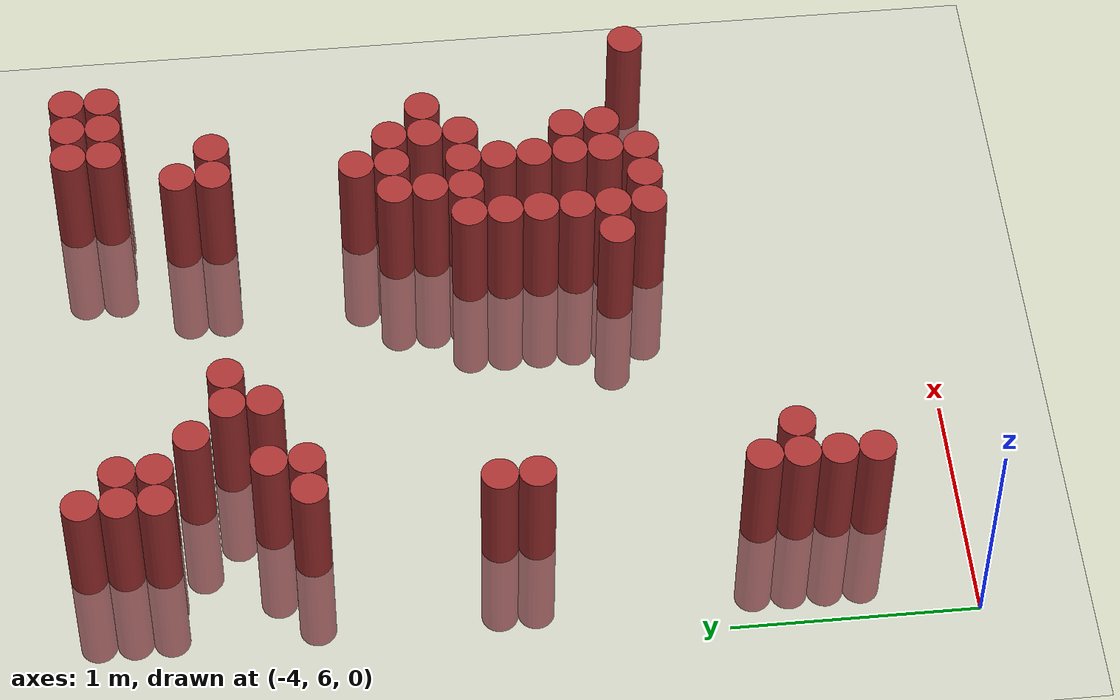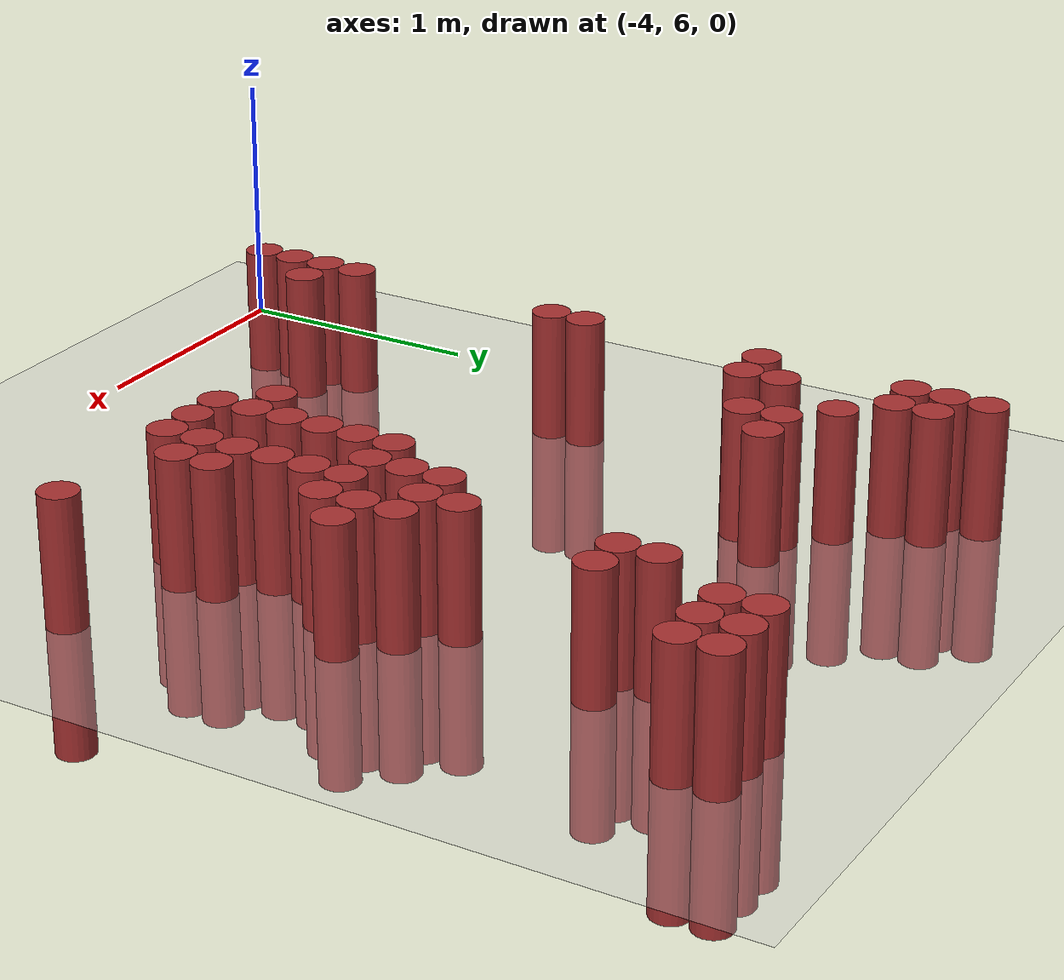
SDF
<sdf version="1.6">
 <world name="world_183">
  <model name="ground_plane">
   <static>1</static>
   <link name="link">
    <collision name="collision">
     <geometry><plane><normal>0 0 1</normal><size>100 100</size></plane></geometry>
     <surface><friction><ode><mu>100</mu><mu2>50</mu2></ode></friction></surface>
    </collision>
    <visual name="visual">
     <cast_shadows>0</cast_shadows>
     <geometry><plane><normal>0 0 1</normal><size>100 100</size></plane></geometry>
     <material>
      <script><uri>file://media/materials/scripts/gazebo.material</uri><name>Gazebo/Grey</name></script>
     </material>
    </visual>
   </link>
  </model>
  <model name="unit_cylinder_173">
   <static>1</static>
   <pose>-3.525000 6.375000 0.000000 0.000000 0.000000 0.000000</pose>
   <link name="link">
    <inertial>
     <mass>1</mass>
     <inertia><ixx>0.145833</ixx><ixy>0</ixy><ixz>0</ixz><iyy>0.145833</iyy><iyz>0</iyz><izz>0.125</izz></inertia>
    </inertial>
    <collision name="collision">
     <geometry><cylinder><radius>0.075000</radius><length>1</length></cylinder></geometry>
    </collision>
    <visual name="visual">
     <geometry><cylinder><radius>0.075000</radius><length>1</length></cylinder></geometry>
     <material>
      <ambient>0.648000 0.192000 0.192000 1</ambient>
      <diffuse>0.648000 0.192000 0.192000 1</diffuse>
     </material>
     <material>
      <script><name>Gazebo/Grey</name><uri>file://media/materials/scripts/gazebo.material</uri></script>
     </material>
    </visual>
   </link>
  </model>
  <model name="unit_cylinder_174">
   <static>1</static>
   <pose>-3.525000 6.525000 0.000000 0.000000 0.000000 0.000000</pose>
   <link name="link">
    <inertial>
     <mass>1</mass>
     <inertia><ixx>0.145833</ixx><ixy>0</ixy><ixz>0</ixz><iyy>0.145833</iyy><iyz>0</iyz><izz>0.125</izz></inertia>
    </inertial>
    <collision name="collision">
     <geometry><cylinder><radius>0.075000</radius><length>1</length></cylinder></geometry>
    </collision>
    <visual name="visual">
     <geometry><cylinder><radius>0.075000</radius><length>1</length></cylinder></geometry>
     <material>
      <ambient>0.648000 0.192000 0.192000 1</ambient>
      <diffuse>0.648000 0.192000 0.192000 1</diffuse>
     </material>
     <material>
      <script><name>Gazebo/Grey</name><uri>file://media/materials/scripts/gazebo.material</uri></script>
     </material>
    </visual>
   </link>
  </model>
  <model name="unit_cylinder_175">
   <static>1</static>
   <pose>-3.525000 6.675000 0.000000 0.000000 0.000000 0.000000</pose>
   <link name="link">
    <inertial>
     <mass>1</mass>
     <inertia><ixx>0.145833</ixx><ixy>0</ixy><ixz>0</ixz><iyy>0.145833</iyy><iyz>0</iyz><izz>0.125</izz></inertia>
    </inertial>
    <collision name="collision">
     <geometry><cylinder><radius>0.075000</radius><length>1</length></cylinder></geometry>
    </collision>
    <visual name="visual">
     <geometry><cylinder><radius>0.075000</radius><length>1</length></cylinder></geometry>
     <material>
      <ambient>0.648000 0.192000 0.192000 1</ambient>
      <diffuse>0.648000 0.192000 0.192000 1</diffuse>
     </material>
     <material>
      <script><name>Gazebo/Grey</name><uri>file://media/materials/scripts/gazebo.material</uri></script>
     </material>
    </visual>
   </link>
  </model>
  <model name="unit_cylinder_176">
   <static>1</static>
   <pose>-3.525000 6.825000 0.000000 0.000000 0.000000 0.000000</pose>
   <link name="link">
    <inertial>
     <mass>1</mass>
     <inertia><ixx>0.145833</ixx><ixy>0</ixy><ixz>0</ixz><iyy>0.145833</iyy><iyz>0</iyz><izz>0.125</izz></inertia>
    </inertial>
    <collision name="collision">
     <geometry><cylinder><radius>0.075000</radius><length>1</length></cylinder></geometry>
    </collision>
    <visual name="visual">
     <geometry><cylinder><radius>0.075000</radius><length>1</length></cylinder></geometry>
     <material>
      <ambient>0.648000 0.192000 0.192000 1</ambient>
      <diffuse>0.648000 0.192000 0.192000 1</diffuse>
     </material>
     <material>
      <script><name>Gazebo/Grey</name><uri>file://media/materials/scripts/gazebo.material</uri></script>
     </material>
    </visual>
   </link>
  </model>
  <model name="unit_cylinder_177">
   <static>1</static>
   <pose>-3.525000 7.725000 0.000000 0.000000 0.000000 0.000000</pose>
   <link name="link">
    <inertial>
     <mass>1</mass>
     <inertia><ixx>0.145833</ixx><ixy>0</ixy><ixz>0</ixz><iyy>0.145833</iyy><iyz>0</iyz><izz>0.125</izz></inertia>
    </inertial>
    <collision name="collision">
     <geometry><cylinder><radius>0.075000</radius><length>1</length></cylinder></geometry>
    </collision>
    <visual name="visual">
     <geometry><cylinder><radius>0.075000</radius><length>1</length></cylinder></geometry>
     <material>
      <ambient>0.648000 0.192000 0.192000 1</ambient>
      <diffuse>0.648000 0.192000 0.192000 1</diffuse>
     </material>
     <material>
      <script><name>Gazebo/Grey</name><uri>file://media/materials/scripts/gazebo.material</uri></script>
     </material>
    </visual>
   </link>
  </model>
  <model name="unit_cylinder_178">
   <static>1</static>
   <pose>-3.525000 7.875000 0.000000 0.000000 0.000000 0.000000</pose>
   <link name="link">
    <inertial>
     <mass>1</mass>
     <inertia><ixx>0.145833</ixx><ixy>0</ixy><ixz>0</ixz><iyy>0.145833</iyy><iyz>0</iyz><izz>0.125</izz></inertia>
    </inertial>
    <collision name="collision">
     <geometry><cylinder><radius>0.075000</radius><length>1</length></cylinder></geometry>
    </collision>
    <visual name="visual">
     <geometry><cylinder><radius>0.075000</radius><length>1</length></cylinder></geometry>
     <material>
      <ambient>0.648000 0.192000 0.192000 1</ambient>
      <diffuse>0.648000 0.192000 0.192000 1</diffuse>
     </material>
     <material>
      <script><name>Gazebo/Grey</name><uri>file://media/materials/scripts/gazebo.material</uri></script>
     </material>
    </visual>
   </link>
  </model>
  <model name="unit_cylinder_179">
   <static>1</static>
   <pose>-3.525000 8.625000 0.000000 0.000000 0.000000 0.000000</pose>
   <link name="link">
    <inertial>
     <mass>1</mass>
     <inertia><ixx>0.145833</ixx><ixy>0</ixy><ixz>0</ixz><iyy>0.145833</iyy><iyz>0</iyz><izz>0.125</izz></inertia>
    </inertial>
    <collision name="collision">
     <geometry><cylinder><radius>0.075000</radius><length>1</length></cylinder></geometry>
    </collision>
    <visual name="visual">
     <geometry><cylinder><radius>0.075000</radius><length>1</length></cylinder></geometry>
     <material>
      <ambient>0.648000 0.192000 0.192000 1</ambient>
      <diffuse>0.648000 0.192000 0.192000 1</diffuse>
     </material>
     <material>
      <script><name>Gazebo/Grey</name><uri>file://media/materials/scripts/gazebo.material</uri></script>
     </material>
    </visual>
   </link>
  </model>
  <model name="unit_cylinder_180">
   <static>1</static>
   <pose>-3.525000 9.225000 0.000000 0.000000 0.000000 0.000000</pose>
   <link name="link">
    <inertial>
     <mass>1</mass>
     <inertia><ixx>0.145833</ixx><ixy>0</ixy><ixz>0</ixz><iyy>0.145833</iyy><iyz>0</iyz><izz>0.125</izz></inertia>
    </inertial>
    <collision name="collision">
     <geometry><cylinder><radius>0.075000</radius><length>1</length></cylinder></geometry>
    </collision>
    <visual name="visual">
     <geometry><cylinder><radius>0.075000</radius><length>1</length></cylinder></geometry>
     <material>
      <ambient>0.648000 0.192000 0.192000 1</ambient>
      <diffuse>0.648000 0.192000 0.192000 1</diffuse>
     </material>
     <material>
      <script><name>Gazebo/Grey</name><uri>file://media/materials/scripts/gazebo.material</uri></script>
     </material>
    </visual>
   </link>
  </model>
  <model name="unit_cylinder_181">
   <static>1</static>
   <pose>-3.525000 9.375000 0.000000 0.000000 0.000000 0.000000</pose>
   <link name="link">
    <inertial>
     <mass>1</mass>
     <inertia><ixx>0.145833</ixx><ixy>0</ixy><ixz>0</ixz><iyy>0.145833</iyy><iyz>0</iyz><izz>0.125</izz></inertia>
    </inertial>
    <collision name="collision">
     <geometry><cylinder><radius>0.075000</radius><length>1</length></cylinder></geometry>
    </collision>
    <visual name="visual">
     <geometry><cylinder><radius>0.075000</radius><length>1</length></cylinder></geometry>
     <material>
      <ambient>0.648000 0.192000 0.192000 1</ambient>
      <diffuse>0.648000 0.192000 0.192000 1</diffuse>
     </material>
     <material>
      <script><name>Gazebo/Grey</name><uri>file://media/materials/scripts/gazebo.material</uri></script>
     </material>
    </visual>
   </link>
  </model>
  <model name="unit_cylinder_182">
   <static>1</static>
   <pose>-3.525000 9.525000 0.000000 0.000000 0.000000 0.000000</pose>
   <link name="link">
    <inertial>
     <mass>1</mass>
     <inertia><ixx>0.145833</ixx><ixy>0</ixy><ixz>0</ixz><iyy>0.145833</iyy><iyz>0</iyz><izz>0.125</izz></inertia>
    </inertial>
    <collision name="collision">
     <geometry><cylinder><radius>0.075000</radius><length>1</length></cylinder></geometry>
    </collision>
    <visual name="visual">
     <geometry><cylinder><radius>0.075000</radius><length>1</length></cylinder></geometry>
     <material>
      <ambient>0.648000 0.192000 0.192000 1</ambient>
      <diffuse>0.648000 0.192000 0.192000 1</diffuse>
     </material>
     <material>
      <script><name>Gazebo/Grey</name><uri>file://media/materials/scripts/gazebo.material</uri></script>
     </material>
    </visual>
   </link>
  </model>
  <model name="unit_cylinder_186">
   <static>1</static>
   <pose>-3.375000 6.675000 0.000000 0.000000 0.000000 0.000000</pose>
   <link name="link">
    <inertial>
     <mass>1</mass>
     <inertia><ixx>0.145833</ixx><ixy>0</ixy><ixz>0</ixz><iyy>0.145833</iyy><iyz>0</iyz><izz>0.125</izz></inertia>
    </inertial>
    <collision name="collision">
     <geometry><cylinder><radius>0.075000</radius><length>1</length></cylinder></geometry>
    </collision>
    <visual name="visual">
     <geometry><cylinder><radius>0.075000</radius><length>1</length></cylinder></geometry>
     <material>
      <ambient>0.648000 0.192000 0.192000 1</ambient>
      <diffuse>0.648000 0.192000 0.192000 1</diffuse>
     </material>
     <material>
      <script><name>Gazebo/Grey</name><uri>file://media/materials/scripts/gazebo.material</uri></script>
     </material>
    </visual>
   </link>
  </model>
  <model name="unit_cylinder_187">
   <static>1</static>
   <pose>-3.375000 8.625000 0.000000 0.000000 0.000000 0.000000</pose>
   <link name="link">
    <inertial>
     <mass>1</mass>
     <inertia><ixx>0.145833</ixx><ixy>0</ixy><ixz>0</ixz><iyy>0.145833</iyy><iyz>0</iyz><izz>0.125</izz></inertia>
    </inertial>
    <collision name="collision">
     <geometry><cylinder><radius>0.075000</radius><length>1</length></cylinder></geometry>
    </collision>
    <visual name="visual">
     <geometry><cylinder><radius>0.075000</radius><length>1</length></cylinder></geometry>
     <material>
      <ambient>0.648000 0.192000 0.192000 1</ambient>
      <diffuse>0.648000 0.192000 0.192000 1</diffuse>
     </material>
     <material>
      <script><name>Gazebo/Grey</name><uri>file://media/materials/scripts/gazebo.material</uri></script>
     </material>
    </visual>
   </link>
  </model>
  <model name="unit_cylinder_188">
   <static>1</static>
   <pose>-3.375000 8.775000 0.000000 0.000000 0.000000 0.000000</pose>
   <link name="link">
    <inertial>
     <mass>1</mass>
     <inertia><ixx>0.145833</ixx><ixy>0</ixy><ixz>0</ixz><iyy>0.145833</iyy><iyz>0</iyz><izz>0.125</izz></inertia>
    </inertial>
    <collision name="collision">
     <geometry><cylinder><radius>0.075000</radius><length>1</length></cylinder></geometry>
    </collision>
    <visual name="visual">
     <geometry><cylinder><radius>0.075000</radius><length>1</length></cylinder></geometry>
     <material>
      <ambient>0.648000 0.192000 0.192000 1</ambient>
      <diffuse>0.648000 0.192000 0.192000 1</diffuse>
     </material>
     <material>
      <script><name>Gazebo/Grey</name><uri>file://media/materials/scripts/gazebo.material</uri></script>
     </material>
    </visual>
   </link>
  </model>
  <model name="unit_cylinder_189">
   <static>1</static>
   <pose>-3.375000 9.225000 0.000000 0.000000 0.000000 0.000000</pose>
   <link name="link">
    <inertial>
     <mass>1</mass>
     <inertia><ixx>0.145833</ixx><ixy>0</ixy><ixz>0</ixz><iyy>0.145833</iyy><iyz>0</iyz><izz>0.125</izz></inertia>
    </inertial>
    <collision name="collision">
     <geometry><cylinder><radius>0.075000</radius><length>1</length></cylinder></geometry>
    </collision>
    <visual name="visual">
     <geometry><cylinder><radius>0.075000</radius><length>1</length></cylinder></geometry>
     <material>
      <ambient>0.648000 0.192000 0.192000 1</ambient>
      <diffuse>0.648000 0.192000 0.192000 1</diffuse>
     </material>
     <material>
      <script><name>Gazebo/Grey</name><uri>file://media/materials/scripts/gazebo.material</uri></script>
     </material>
    </visual>
   </link>
  </model>
  <model name="unit_cylinder_190">
   <static>1</static>
   <pose>-3.375000 9.375000 0.000000 0.000000 0.000000 0.000000</pose>
   <link name="link">
    <inertial>
     <mass>1</mass>
     <inertia><ixx>0.145833</ixx><ixy>0</ixy><ixz>0</ixz><iyy>0.145833</iyy><iyz>0</iyz><izz>0.125</izz></inertia>
    </inertial>
    <collision name="collision">
     <geometry><cylinder><radius>0.075000</radius><length>1</length></cylinder></geometry>
    </collision>
    <visual name="visual">
     <geometry><cylinder><radius>0.075000</radius><length>1</length></cylinder></geometry>
     <material>
      <ambient>0.648000 0.192000 0.192000 1</ambient>
      <diffuse>0.648000 0.192000 0.192000 1</diffuse>
     </material>
     <material>
      <script><name>Gazebo/Grey</name><uri>file://media/materials/scripts/gazebo.material</uri></script>
     </material>
    </visual>
   </link>
  </model>
  <model name="unit_cylinder_195">
   <static>1</static>
   <pose>-3.225000 9.075000 0.000000 0.000000 0.000000 0.000000</pose>
   <link name="link">
    <inertial>
     <mass>1</mass>
     <inertia><ixx>0.145833</ixx><ixy>0</ixy><ixz>0</ixz><iyy>0.145833</iyy><iyz>0</iyz><izz>0.125</izz></inertia>
    </inertial>
    <collision name="collision">
     <geometry><cylinder><radius>0.075000</radius><length>1</length></cylinder></geometry>
    </collision>
    <visual name="visual">
     <geometry><cylinder><radius>0.075000</radius><length>1</length></cylinder></geometry>
     <material>
      <ambient>0.648000 0.192000 0.192000 1</ambient>
      <diffuse>0.648000 0.192000 0.192000 1</diffuse>
     </material>
     <material>
      <script><name>Gazebo/Grey</name><uri>file://media/materials/scripts/gazebo.material</uri></script>
     </material>
    </visual>
   </link>
  </model>
  <model name="unit_cylinder_197">
   <static>1</static>
   <pose>-3.075000 8.775000 0.000000 0.000000 0.000000 0.000000</pose>
   <link name="link">
    <inertial>
     <mass>1</mass>
     <inertia><ixx>0.145833</ixx><ixy>0</ixy><ixz>0</ixz><iyy>0.145833</iyy><iyz>0</iyz><izz>0.125</izz></inertia>
    </inertial>
    <collision name="collision">
     <geometry><cylinder><radius>0.075000</radius><length>1</length></cylinder></geometry>
    </collision>
    <visual name="visual">
     <geometry><cylinder><radius>0.075000</radius><length>1</length></cylinder></geometry>
     <material>
      <ambient>0.648000 0.192000 0.192000 1</ambient>
      <diffuse>0.648000 0.192000 0.192000 1</diffuse>
     </material>
     <material>
      <script><name>Gazebo/Grey</name><uri>file://media/materials/scripts/gazebo.material</uri></script>
     </material>
    </visual>
   </link>
  </model>
  <model name="unit_cylinder_198">
   <static>1</static>
   <pose>-3.075000 8.925000 0.000000 0.000000 0.000000 0.000000</pose>
   <link name="link">
    <inertial>
     <mass>1</mass>
     <inertia><ixx>0.145833</ixx><ixy>0</ixy><ixz>0</ixz><iyy>0.145833</iyy><iyz>0</iyz><izz>0.125</izz></inertia>
    </inertial>
    <collision name="collision">
     <geometry><cylinder><radius>0.075000</radius><length>1</length></cylinder></geometry>
    </collision>
    <visual name="visual">
     <geometry><cylinder><radius>0.075000</radius><length>1</length></cylinder></geometry>
     <material>
      <ambient>0.648000 0.192000 0.192000 1</ambient>
      <diffuse>0.648000 0.192000 0.192000 1</diffuse>
     </material>
     <material>
      <script><name>Gazebo/Grey</name><uri>file://media/materials/scripts/gazebo.material</uri></script>
     </material>
    </visual>
   </link>
  </model>
  <model name="unit_cylinder_200">
   <static>1</static>
   <pose>-2.925000 8.925000 0.000000 0.000000 0.000000 0.000000</pose>
   <link name="link">
    <inertial>
     <mass>1</mass>
     <inertia><ixx>0.145833</ixx><ixy>0</ixy><ixz>0</ixz><iyy>0.145833</iyy><iyz>0</iyz><izz>0.125</izz></inertia>
    </inertial>
    <collision name="collision">
     <geometry><cylinder><radius>0.075000</radius><length>1</length></cylinder></geometry>
    </collision>
    <visual name="visual">
     <geometry><cylinder><radius>0.075000</radius><length>1</length></cylinder></geometry>
     <material>
      <ambient>0.648000 0.192000 0.192000 1</ambient>
      <diffuse>0.648000 0.192000 0.192000 1</diffuse>
     </material>
     <material>
      <script><name>Gazebo/Grey</name><uri>file://media/materials/scripts/gazebo.material</uri></script>
     </material>
    </visual>
   </link>
  </model>
  <model name="unit_cylinder_208">
   <static>1</static>
   <pose>-2.325000 7.275000 0.000000 0.000000 0.000000 0.000000</pose>
   <link name="link">
    <inertial>
     <mass>1</mass>
     <inertia><ixx>0.145833</ixx><ixy>0</ixy><ixz>0</ixz><iyy>0.145833</iyy><iyz>0</iyz><izz>0.125</izz></inertia>
    </inertial>
    <collision name="collision">
     <geometry><cylinder><radius>0.075000</radius><length>1</length></cylinder></geometry>
    </collision>
    <visual name="visual">
     <geometry><cylinder><radius>0.075000</radius><length>1</length></cylinder></geometry>
     <material>
      <ambient>0.648000 0.192000 0.192000 1</ambient>
      <diffuse>0.648000 0.192000 0.192000 1</diffuse>
     </material>
     <material>
      <script><name>Gazebo/Grey</name><uri>file://media/materials/scripts/gazebo.material</uri></script>
     </material>
    </visual>
   </link>
  </model>
  <model name="unit_cylinder_209">
   <static>1</static>
   <pose>-2.175000 7.125000 0.000000 0.000000 0.000000 0.000000</pose>
   <link name="link">
    <inertial>
     <mass>1</mass>
     <inertia><ixx>0.145833</ixx><ixy>0</ixy><ixz>0</ixz><iyy>0.145833</iyy><iyz>0</iyz><izz>0.125</izz></inertia>
    </inertial>
    <collision name="collision">
     <geometry><cylinder><radius>0.075000</radius><length>1</length></cylinder></geometry>
    </collision>
    <visual name="visual">
     <geometry><cylinder><radius>0.075000</radius><length>1</length></cylinder></geometry>
     <material>
      <ambient>0.648000 0.192000 0.192000 1</ambient>
      <diffuse>0.648000 0.192000 0.192000 1</diffuse>
     </material>
     <material>
      <script><name>Gazebo/Grey</name><uri>file://media/materials/scripts/gazebo.material</uri></script>
     </material>
    </visual>
   </link>
  </model>
  <model name="unit_cylinder_210">
   <static>1</static>
   <pose>-2.175000 7.275000 0.000000 0.000000 0.000000 0.000000</pose>
   <link name="link">
    <inertial>
     <mass>1</mass>
     <inertia><ixx>0.145833</ixx><ixy>0</ixy><ixz>0</ixz><iyy>0.145833</iyy><iyz>0</iyz><izz>0.125</izz></inertia>
    </inertial>
    <collision name="collision">
     <geometry><cylinder><radius>0.075000</radius><length>1</length></cylinder></geometry>
    </collision>
    <visual name="visual">
     <geometry><cylinder><radius>0.075000</radius><length>1</length></cylinder></geometry>
     <material>
      <ambient>0.648000 0.192000 0.192000 1</ambient>
      <diffuse>0.648000 0.192000 0.192000 1</diffuse>
     </material>
     <material>
      <script><name>Gazebo/Grey</name><uri>file://media/materials/scripts/gazebo.material</uri></script>
     </material>
    </visual>
   </link>
  </model>
  <model name="unit_cylinder_211">
   <static>1</static>
   <pose>-2.175000 7.425000 0.000000 0.000000 0.000000 0.000000</pose>
   <link name="link">
    <inertial>
     <mass>1</mass>
     <inertia><ixx>0.145833</ixx><ixy>0</ixy><ixz>0</ixz><iyy>0.145833</iyy><iyz>0</iyz><izz>0.125</izz></inertia>
    </inertial>
    <collision name="collision">
     <geometry><cylinder><radius>0.075000</radius><length>1</length></cylinder></geometry>
    </collision>
    <visual name="visual">
     <geometry><cylinder><radius>0.075000</radius><length>1</length></cylinder></geometry>
     <material>
      <ambient>0.648000 0.192000 0.192000 1</ambient>
      <diffuse>0.648000 0.192000 0.192000 1</diffuse>
     </material>
     <material>
      <script><name>Gazebo/Grey</name><uri>file://media/materials/scripts/gazebo.material</uri></script>
     </material>
    </visual>
   </link>
  </model>
  <model name="unit_cylinder_212">
   <static>1</static>
   <pose>-2.175000 7.575000 0.000000 0.000000 0.000000 0.000000</pose>
   <link name="link">
    <inertial>
     <mass>1</mass>
     <inertia><ixx>0.145833</ixx><ixy>0</ixy><ixz>0</ixz><iyy>0.145833</iyy><iyz>0</iyz><izz>0.125</izz></inertia>
    </inertial>
    <collision name="collision">
     <geometry><cylinder><radius>0.075000</radius><length>1</length></cylinder></geometry>
    </collision>
    <visual name="visual">
     <geometry><cylinder><radius>0.075000</radius><length>1</length></cylinder></geometry>
     <material>
      <ambient>0.648000 0.192000 0.192000 1</ambient>
      <diffuse>0.648000 0.192000 0.192000 1</diffuse>
     </material>
     <material>
      <script><name>Gazebo/Grey</name><uri>file://media/materials/scripts/gazebo.material</uri></script>
     </material>
    </visual>
   </link>
  </model>
  <model name="unit_cylinder_213">
   <static>1</static>
   <pose>-2.175000 7.725000 0.000000 0.000000 0.000000 0.000000</pose>
   <link name="link">
    <inertial>
     <mass>1</mass>
     <inertia><ixx>0.145833</ixx><ixy>0</ixy><ixz>0</ixz><iyy>0.145833</iyy><iyz>0</iyz><izz>0.125</izz></inertia>
    </inertial>
    <collision name="collision">
     <geometry><cylinder><radius>0.075000</radius><length>1</length></cylinder></geometry>
    </collision>
    <visual name="visual">
     <geometry><cylinder><radius>0.075000</radius><length>1</length></cylinder></geometry>
     <material>
      <ambient>0.648000 0.192000 0.192000 1</ambient>
      <diffuse>0.648000 0.192000 0.192000 1</diffuse>
     </material>
     <material>
      <script><name>Gazebo/Grey</name><uri>file://media/materials/scripts/gazebo.material</uri></script>
     </material>
    </visual>
   </link>
  </model>
  <model name="unit_cylinder_214">
   <static>1</static>
   <pose>-2.175000 7.875000 0.000000 0.000000 0.000000 0.000000</pose>
   <link name="link">
    <inertial>
     <mass>1</mass>
     <inertia><ixx>0.145833</ixx><ixy>0</ixy><ixz>0</ixz><iyy>0.145833</iyy><iyz>0</iyz><izz>0.125</izz></inertia>
    </inertial>
    <collision name="collision">
     <geometry><cylinder><radius>0.075000</radius><length>1</length></cylinder></geometry>
    </collision>
    <visual name="visual">
     <geometry><cylinder><radius>0.075000</radius><length>1</length></cylinder></geometry>
     <material>
      <ambient>0.648000 0.192000 0.192000 1</ambient>
      <diffuse>0.648000 0.192000 0.192000 1</diffuse>
     </material>
     <material>
      <script><name>Gazebo/Grey</name><uri>file://media/materials/scripts/gazebo.material</uri></script>
     </material>
    </visual>
   </link>
  </model>
  <model name="unit_cylinder_215">
   <static>1</static>
   <pose>-2.025000 7.125000 0.000000 0.000000 0.000000 0.000000</pose>
   <link name="link">
    <inertial>
     <mass>1</mass>
     <inertia><ixx>0.145833</ixx><ixy>0</ixy><ixz>0</ixz><iyy>0.145833</iyy><iyz>0</iyz><izz>0.125</izz></inertia>
    </inertial>
    <collision name="collision">
     <geometry><cylinder><radius>0.075000</radius><length>1</length></cylinder></geometry>
    </collision>
    <visual name="visual">
     <geometry><cylinder><radius>0.075000</radius><length>1</length></cylinder></geometry>
     <material>
      <ambient>0.648000 0.192000 0.192000 1</ambient>
      <diffuse>0.648000 0.192000 0.192000 1</diffuse>
     </material>
     <material>
      <script><name>Gazebo/Grey</name><uri>file://media/materials/scripts/gazebo.material</uri></script>
     </material>
    </visual>
   </link>
  </model>
  <model name="unit_cylinder_216">
   <static>1</static>
   <pose>-2.025000 7.875000 0.000000 0.000000 0.000000 0.000000</pose>
   <link name="link">
    <inertial>
     <mass>1</mass>
     <inertia><ixx>0.145833</ixx><ixy>0</ixy><ixz>0</ixz><iyy>0.145833</iyy><iyz>0</iyz><izz>0.125</izz></inertia>
    </inertial>
    <collision name="collision">
     <geometry><cylinder><radius>0.075000</radius><length>1</length></cylinder></geometry>
    </collision>
    <visual name="visual">
     <geometry><cylinder><radius>0.075000</radius><length>1</length></cylinder></geometry>
     <material>
      <ambient>0.648000 0.192000 0.192000 1</ambient>
      <diffuse>0.648000 0.192000 0.192000 1</diffuse>
     </material>
     <material>
      <script><name>Gazebo/Grey</name><uri>file://media/materials/scripts/gazebo.material</uri></script>
     </material>
    </visual>
   </link>
  </model>
  <model name="unit_cylinder_217">
   <static>1</static>
   <pose>-2.025000 8.025000 0.000000 0.000000 0.000000 0.000000</pose>
   <link name="link">
    <inertial>
     <mass>1</mass>
     <inertia><ixx>0.145833</ixx><ixy>0</ixy><ixz>0</ixz><iyy>0.145833</iyy><iyz>0</iyz><izz>0.125</izz></inertia>
    </inertial>
    <collision name="collision">
     <geometry><cylinder><radius>0.075000</radius><length>1</length></cylinder></geometry>
    </collision>
    <visual name="visual">
     <geometry><cylinder><radius>0.075000</radius><length>1</length></cylinder></geometry>
     <material>
      <ambient>0.648000 0.192000 0.192000 1</ambient>
      <diffuse>0.648000 0.192000 0.192000 1</diffuse>
     </material>
     <material>
      <script><name>Gazebo/Grey</name><uri>file://media/materials/scripts/gazebo.material</uri></script>
     </material>
    </visual>
   </link>
  </model>
  <model name="unit_cylinder_218">
   <static>1</static>
   <pose>-2.025000 8.175000 0.000000 0.000000 0.000000 0.000000</pose>
   <link name="link">
    <inertial>
     <mass>1</mass>
     <inertia><ixx>0.145833</ixx><ixy>0</ixy><ixz>0</ixz><iyy>0.145833</iyy><iyz>0</iyz><izz>0.125</izz></inertia>
    </inertial>
    <collision name="collision">
     <geometry><cylinder><radius>0.075000</radius><length>1</length></cylinder></geometry>
    </collision>
    <visual name="visual">
     <geometry><cylinder><radius>0.075000</radius><length>1</length></cylinder></geometry>
     <material>
      <ambient>0.648000 0.192000 0.192000 1</ambient>
      <diffuse>0.648000 0.192000 0.192000 1</diffuse>
     </material>
     <material>
      <script><name>Gazebo/Grey</name><uri>file://media/materials/scripts/gazebo.material</uri></script>
     </material>
    </visual>
   </link>
  </model>
  <model name="unit_cylinder_219">
   <static>1</static>
   <pose>-1.875000 7.125000 0.000000 0.000000 0.000000 0.000000</pose>
   <link name="link">
    <inertial>
     <mass>1</mass>
     <inertia><ixx>0.145833</ixx><ixy>0</ixy><ixz>0</ixz><iyy>0.145833</iyy><iyz>0</iyz><izz>0.125</izz></inertia>
    </inertial>
    <collision name="collision">
     <geometry><cylinder><radius>0.075000</radius><length>1</length></cylinder></geometry>
    </collision>
    <visual name="visual">
     <geometry><cylinder><radius>0.075000</radius><length>1</length></cylinder></geometry>
     <material>
      <ambient>0.648000 0.192000 0.192000 1</ambient>
      <diffuse>0.648000 0.192000 0.192000 1</diffuse>
     </material>
     <material>
      <script><name>Gazebo/Grey</name><uri>file://media/materials/scripts/gazebo.material</uri></script>
     </material>
    </visual>
   </link>
  </model>
  <model name="unit_cylinder_220">
   <static>1</static>
   <pose>-1.875000 7.275000 0.000000 0.000000 0.000000 0.000000</pose>
   <link name="link">
    <inertial>
     <mass>1</mass>
     <inertia><ixx>0.145833</ixx><ixy>0</ixy><ixz>0</ixz><iyy>0.145833</iyy><iyz>0</iyz><izz>0.125</izz></inertia>
    </inertial>
    <collision name="collision">
     <geometry><cylinder><radius>0.075000</radius><length>1</length></cylinder></geometry>
    </collision>
    <visual name="visual">
     <geometry><cylinder><radius>0.075000</radius><length>1</length></cylinder></geometry>
     <material>
      <ambient>0.648000 0.192000 0.192000 1</ambient>
      <diffuse>0.648000 0.192000 0.192000 1</diffuse>
     </material>
     <material>
      <script><name>Gazebo/Grey</name><uri>file://media/materials/scripts/gazebo.material</uri></script>
     </material>
    </visual>
   </link>
  </model>
  <model name="unit_cylinder_221">
   <static>1</static>
   <pose>-1.875000 7.425000 0.000000 0.000000 0.000000 0.000000</pose>
   <link name="link">
    <inertial>
     <mass>1</mass>
     <inertia><ixx>0.145833</ixx><ixy>0</ixy><ixz>0</ixz><iyy>0.145833</iyy><iyz>0</iyz><izz>0.125</izz></inertia>
    </inertial>
    <collision name="collision">
     <geometry><cylinder><radius>0.075000</radius><length>1</length></cylinder></geometry>
    </collision>
    <visual name="visual">
     <geometry><cylinder><radius>0.075000</radius><length>1</length></cylinder></geometry>
     <material>
      <ambient>0.648000 0.192000 0.192000 1</ambient>
      <diffuse>0.648000 0.192000 0.192000 1</diffuse>
     </material>
     <material>
      <script><name>Gazebo/Grey</name><uri>file://media/materials/scripts/gazebo.material</uri></script>
     </material>
    </visual>
   </link>
  </model>
  <model name="unit_cylinder_222">
   <static>1</static>
   <pose>-1.875000 7.575000 0.000000 0.000000 0.000000 0.000000</pose>
   <link name="link">
    <inertial>
     <mass>1</mass>
     <inertia><ixx>0.145833</ixx><ixy>0</ixy><ixz>0</ixz><iyy>0.145833</iyy><iyz>0</iyz><izz>0.125</izz></inertia>
    </inertial>
    <collision name="collision">
     <geometry><cylinder><radius>0.075000</radius><length>1</length></cylinder></geometry>
    </collision>
    <visual name="visual">
     <geometry><cylinder><radius>0.075000</radius><length>1</length></cylinder></geometry>
     <material>
      <ambient>0.648000 0.192000 0.192000 1</ambient>
      <diffuse>0.648000 0.192000 0.192000 1</diffuse>
     </material>
     <material>
      <script><name>Gazebo/Grey</name><uri>file://media/materials/scripts/gazebo.material</uri></script>
     </material>
    </visual>
   </link>
  </model>
  <model name="unit_cylinder_223">
   <static>1</static>
   <pose>-1.875000 7.725000 0.000000 0.000000 0.000000 0.000000</pose>
   <link name="link">
    <inertial>
     <mass>1</mass>
     <inertia><ixx>0.145833</ixx><ixy>0</ixy><ixz>0</ixz><iyy>0.145833</iyy><iyz>0</iyz><izz>0.125</izz></inertia>
    </inertial>
    <collision name="collision">
     <geometry><cylinder><radius>0.075000</radius><length>1</length></cylinder></geometry>
    </collision>
    <visual name="visual">
     <geometry><cylinder><radius>0.075000</radius><length>1</length></cylinder></geometry>
     <material>
      <ambient>0.648000 0.192000 0.192000 1</ambient>
      <diffuse>0.648000 0.192000 0.192000 1</diffuse>
     </material>
     <material>
      <script><name>Gazebo/Grey</name><uri>file://media/materials/scripts/gazebo.material</uri></script>
     </material>
    </visual>
   </link>
  </model>
  <model name="unit_cylinder_224">
   <static>1</static>
   <pose>-1.875000 7.875000 0.000000 0.000000 0.000000 0.000000</pose>
   <link name="link">
    <inertial>
     <mass>1</mass>
     <inertia><ixx>0.145833</ixx><ixy>0</ixy><ixz>0</ixz><iyy>0.145833</iyy><iyz>0</iyz><izz>0.125</izz></inertia>
    </inertial>
    <collision name="collision">
     <geometry><cylinder><radius>0.075000</radius><length>1</length></cylinder></geometry>
    </collision>
    <visual name="visual">
     <geometry><cylinder><radius>0.075000</radius><length>1</length></cylinder></geometry>
     <material>
      <ambient>0.648000 0.192000 0.192000 1</ambient>
      <diffuse>0.648000 0.192000 0.192000 1</diffuse>
     </material>
     <material>
      <script><name>Gazebo/Grey</name><uri>file://media/materials/scripts/gazebo.material</uri></script>
     </material>
    </visual>
   </link>
  </model>
  <model name="unit_cylinder_225">
   <static>1</static>
   <pose>-1.875000 8.175000 0.000000 0.000000 0.000000 0.000000</pose>
   <link name="link">
    <inertial>
     <mass>1</mass>
     <inertia><ixx>0.145833</ixx><ixy>0</ixy><ixz>0</ixz><iyy>0.145833</iyy><iyz>0</iyz><izz>0.125</izz></inertia>
    </inertial>
    <collision name="collision">
     <geometry><cylinder><radius>0.075000</radius><length>1</length></cylinder></geometry>
    </collision>
    <visual name="visual">
     <geometry><cylinder><radius>0.075000</radius><length>1</length></cylinder></geometry>
     <material>
      <ambient>0.648000 0.192000 0.192000 1</ambient>
      <diffuse>0.648000 0.192000 0.192000 1</diffuse>
     </material>
     <material>
      <script><name>Gazebo/Grey</name><uri>file://media/materials/scripts/gazebo.material</uri></script>
     </material>
    </visual>
   </link>
  </model>
  <model name="unit_cylinder_226">
   <static>1</static>
   <pose>-1.875000 8.325000 0.000000 0.000000 0.000000 0.000000</pose>
   <link name="link">
    <inertial>
     <mass>1</mass>
     <inertia><ixx>0.145833</ixx><ixy>0</ixy><ixz>0</ixz><iyy>0.145833</iyy><iyz>0</iyz><izz>0.125</izz></inertia>
    </inertial>
    <collision name="collision">
     <geometry><cylinder><radius>0.075000</radius><length>1</length></cylinder></geometry>
    </collision>
    <visual name="visual">
     <geometry><cylinder><radius>0.075000</radius><length>1</length></cylinder></geometry>
     <material>
      <ambient>0.648000 0.192000 0.192000 1</ambient>
      <diffuse>0.648000 0.192000 0.192000 1</diffuse>
     </material>
     <material>
      <script><name>Gazebo/Grey</name><uri>file://media/materials/scripts/gazebo.material</uri></script>
     </material>
    </visual>
   </link>
  </model>
  <model name="unit_cylinder_227">
   <static>1</static>
   <pose>-1.875000 8.925000 0.000000 0.000000 0.000000 0.000000</pose>
   <link name="link">
    <inertial>
     <mass>1</mass>
     <inertia><ixx>0.145833</ixx><ixy>0</ixy><ixz>0</ixz><iyy>0.145833</iyy><iyz>0</iyz><izz>0.125</izz></inertia>
    </inertial>
    <collision name="collision">
     <geometry><cylinder><radius>0.075000</radius><length>1</length></cylinder></geometry>
    </collision>
    <visual name="visual">
     <geometry><cylinder><radius>0.075000</radius><length>1</length></cylinder></geometry>
     <material>
      <ambient>0.648000 0.192000 0.192000 1</ambient>
      <diffuse>0.648000 0.192000 0.192000 1</diffuse>
     </material>
     <material>
      <script><name>Gazebo/Grey</name><uri>file://media/materials/scripts/gazebo.material</uri></script>
     </material>
    </visual>
   </link>
  </model>
  <model name="unit_cylinder_228">
   <static>1</static>
   <pose>-1.875000 9.075000 0.000000 0.000000 0.000000 0.000000</pose>
   <link name="link">
    <inertial>
     <mass>1</mass>
     <inertia><ixx>0.145833</ixx><ixy>0</ixy><ixz>0</ixz><iyy>0.145833</iyy><iyz>0</iyz><izz>0.125</izz></inertia>
    </inertial>
    <collision name="collision">
     <geometry><cylinder><radius>0.075000</radius><length>1</length></cylinder></geometry>
    </collision>
    <visual name="visual">
     <geometry><cylinder><radius>0.075000</radius><length>1</length></cylinder></geometry>
     <material>
      <ambient>0.648000 0.192000 0.192000 1</ambient>
      <diffuse>0.648000 0.192000 0.192000 1</diffuse>
     </material>
     <material>
      <script><name>Gazebo/Grey</name><uri>file://media/materials/scripts/gazebo.material</uri></script>
     </material>
    </visual>
   </link>
  </model>
  <model name="unit_cylinder_229">
   <static>1</static>
   <pose>-1.725000 7.275000 0.000000 0.000000 0.000000 0.000000</pose>
   <link name="link">
    <inertial>
     <mass>1</mass>
     <inertia><ixx>0.145833</ixx><ixy>0</ixy><ixz>0</ixz><iyy>0.145833</iyy><iyz>0</iyz><izz>0.125</izz></inertia>
    </inertial>
    <collision name="collision">
     <geometry><cylinder><radius>0.075000</radius><length>1</length></cylinder></geometry>
    </collision>
    <visual name="visual">
     <geometry><cylinder><radius>0.075000</radius><length>1</length></cylinder></geometry>
     <material>
      <ambient>0.648000 0.192000 0.192000 1</ambient>
      <diffuse>0.648000 0.192000 0.192000 1</diffuse>
     </material>
     <material>
      <script><name>Gazebo/Grey</name><uri>file://media/materials/scripts/gazebo.material</uri></script>
     </material>
    </visual>
   </link>
  </model>
  <model name="unit_cylinder_230">
   <static>1</static>
   <pose>-1.725000 7.425000 0.000000 0.000000 0.000000 0.000000</pose>
   <link name="link">
    <inertial>
     <mass>1</mass>
     <inertia><ixx>0.145833</ixx><ixy>0</ixy><ixz>0</ixz><iyy>0.145833</iyy><iyz>0</iyz><izz>0.125</izz></inertia>
    </inertial>
    <collision name="collision">
     <geometry><cylinder><radius>0.075000</radius><length>1</length></cylinder></geometry>
    </collision>
    <visual name="visual">
     <geometry><cylinder><radius>0.075000</radius><length>1</length></cylinder></geometry>
     <material>
      <ambient>0.648000 0.192000 0.192000 1</ambient>
      <diffuse>0.648000 0.192000 0.192000 1</diffuse>
     </material>
     <material>
      <script><name>Gazebo/Grey</name><uri>file://media/materials/scripts/gazebo.material</uri></script>
     </material>
    </visual>
   </link>
  </model>
  <model name="unit_cylinder_231">
   <static>1</static>
   <pose>-1.725000 7.875000 0.000000 0.000000 0.000000 0.000000</pose>
   <link name="link">
    <inertial>
     <mass>1</mass>
     <inertia><ixx>0.145833</ixx><ixy>0</ixy><ixz>0</ixz><iyy>0.145833</iyy><iyz>0</iyz><izz>0.125</izz></inertia>
    </inertial>
    <collision name="collision">
     <geometry><cylinder><radius>0.075000</radius><length>1</length></cylinder></geometry>
    </collision>
    <visual name="visual">
     <geometry><cylinder><radius>0.075000</radius><length>1</length></cylinder></geometry>
     <material>
      <ambient>0.648000 0.192000 0.192000 1</ambient>
      <diffuse>0.648000 0.192000 0.192000 1</diffuse>
     </material>
     <material>
      <script><name>Gazebo/Grey</name><uri>file://media/materials/scripts/gazebo.material</uri></script>
     </material>
    </visual>
   </link>
  </model>
  <model name="unit_cylinder_232">
   <static>1</static>
   <pose>-1.725000 8.025000 0.000000 0.000000 0.000000 0.000000</pose>
   <link name="link">
    <inertial>
     <mass>1</mass>
     <inertia><ixx>0.145833</ixx><ixy>0</ixy><ixz>0</ixz><iyy>0.145833</iyy><iyz>0</iyz><izz>0.125</izz></inertia>
    </inertial>
    <collision name="collision">
     <geometry><cylinder><radius>0.075000</radius><length>1</length></cylinder></geometry>
    </collision>
    <visual name="visual">
     <geometry><cylinder><radius>0.075000</radius><length>1</length></cylinder></geometry>
     <material>
      <ambient>0.648000 0.192000 0.192000 1</ambient>
      <diffuse>0.648000 0.192000 0.192000 1</diffuse>
     </material>
     <material>
      <script><name>Gazebo/Grey</name><uri>file://media/materials/scripts/gazebo.material</uri></script>
     </material>
    </visual>
   </link>
  </model>
  <model name="unit_cylinder_233">
   <static>1</static>
   <pose>-1.725000 8.175000 0.000000 0.000000 0.000000 0.000000</pose>
   <link name="link">
    <inertial>
     <mass>1</mass>
     <inertia><ixx>0.145833</ixx><ixy>0</ixy><ixz>0</ixz><iyy>0.145833</iyy><iyz>0</iyz><izz>0.125</izz></inertia>
    </inertial>
    <collision name="collision">
     <geometry><cylinder><radius>0.075000</radius><length>1</length></cylinder></geometry>
    </collision>
    <visual name="visual">
     <geometry><cylinder><radius>0.075000</radius><length>1</length></cylinder></geometry>
     <material>
      <ambient>0.648000 0.192000 0.192000 1</ambient>
      <diffuse>0.648000 0.192000 0.192000 1</diffuse>
     </material>
     <material>
      <script><name>Gazebo/Grey</name><uri>file://media/materials/scripts/gazebo.material</uri></script>
     </material>
    </visual>
   </link>
  </model>
  <model name="unit_cylinder_234">
   <static>1</static>
   <pose>-1.725000 8.925000 0.000000 0.000000 0.000000 0.000000</pose>
   <link name="link">
    <inertial>
     <mass>1</mass>
     <inertia><ixx>0.145833</ixx><ixy>0</ixy><ixz>0</ixz><iyy>0.145833</iyy><iyz>0</iyz><izz>0.125</izz></inertia>
    </inertial>
    <collision name="collision">
     <geometry><cylinder><radius>0.075000</radius><length>1</length></cylinder></geometry>
    </collision>
    <visual name="visual">
     <geometry><cylinder><radius>0.075000</radius><length>1</length></cylinder></geometry>
     <material>
      <ambient>0.648000 0.192000 0.192000 1</ambient>
      <diffuse>0.648000 0.192000 0.192000 1</diffuse>
     </material>
     <material>
      <script><name>Gazebo/Grey</name><uri>file://media/materials/scripts/gazebo.material</uri></script>
     </material>
    </visual>
   </link>
  </model>
  <model name="unit_cylinder_235">
   <static>1</static>
   <pose>-1.725000 9.375000 0.000000 0.000000 0.000000 0.000000</pose>
   <link name="link">
    <inertial>
     <mass>1</mass>
     <inertia><ixx>0.145833</ixx><ixy>0</ixy><ixz>0</ixz><iyy>0.145833</iyy><iyz>0</iyz><izz>0.125</izz></inertia>
    </inertial>
    <collision name="collision">
     <geometry><cylinder><radius>0.075000</radius><length>1</length></cylinder></geometry>
    </collision>
    <visual name="visual">
     <geometry><cylinder><radius>0.075000</radius><length>1</length></cylinder></geometry>
     <material>
      <ambient>0.648000 0.192000 0.192000 1</ambient>
      <diffuse>0.648000 0.192000 0.192000 1</diffuse>
     </material>
     <material>
      <script><name>Gazebo/Grey</name><uri>file://media/materials/scripts/gazebo.material</uri></script>
     </material>
    </visual>
   </link>
  </model>
  <model name="unit_cylinder_236">
   <static>1</static>
   <pose>-1.725000 9.525000 0.000000 0.000000 0.000000 0.000000</pose>
   <link name="link">
    <inertial>
     <mass>1</mass>
     <inertia><ixx>0.145833</ixx><ixy>0</ixy><ixz>0</ixz><iyy>0.145833</iyy><iyz>0</iyz><izz>0.125</izz></inertia>
    </inertial>
    <collision name="collision">
     <geometry><cylinder><radius>0.075000</radius><length>1</length></cylinder></geometry>
    </collision>
    <visual name="visual">
     <geometry><cylinder><radius>0.075000</radius><length>1</length></cylinder></geometry>
     <material>
      <ambient>0.648000 0.192000 0.192000 1</ambient>
      <diffuse>0.648000 0.192000 0.192000 1</diffuse>
     </material>
     <material>
      <script><name>Gazebo/Grey</name><uri>file://media/materials/scripts/gazebo.material</uri></script>
     </material>
    </visual>
   </link>
  </model>
  <model name="unit_cylinder_237">
   <static>1</static>
   <pose>-1.575000 8.025000 0.000000 0.000000 0.000000 0.000000</pose>
   <link name="link">
    <inertial>
     <mass>1</mass>
     <inertia><ixx>0.145833</ixx><ixy>0</ixy><ixz>0</ixz><iyy>0.145833</iyy><iyz>0</iyz><izz>0.125</izz></inertia>
    </inertial>
    <collision name="collision">
     <geometry><cylinder><radius>0.075000</radius><length>1</length></cylinder></geometry>
    </collision>
    <visual name="visual">
     <geometry><cylinder><radius>0.075000</radius><length>1</length></cylinder></geometry>
     <material>
      <ambient>0.648000 0.192000 0.192000 1</ambient>
      <diffuse>0.648000 0.192000 0.192000 1</diffuse>
     </material>
     <material>
      <script><name>Gazebo/Grey</name><uri>file://media/materials/scripts/gazebo.material</uri></script>
     </material>
    </visual>
   </link>
  </model>
  <model name="unit_cylinder_238">
   <static>1</static>
   <pose>-1.575000 9.375000 0.000000 0.000000 0.000000 0.000000</pose>
   <link name="link">
    <inertial>
     <mass>1</mass>
     <inertia><ixx>0.145833</ixx><ixy>0</ixy><ixz>0</ixz><iyy>0.145833</iyy><iyz>0</iyz><izz>0.125</izz></inertia>
    </inertial>
    <collision name="collision">
     <geometry><cylinder><radius>0.075000</radius><length>1</length></cylinder></geometry>
    </collision>
    <visual name="visual">
     <geometry><cylinder><radius>0.075000</radius><length>1</length></cylinder></geometry>
     <material>
      <ambient>0.648000 0.192000 0.192000 1</ambient>
      <diffuse>0.648000 0.192000 0.192000 1</diffuse>
     </material>
     <material>
      <script><name>Gazebo/Grey</name><uri>file://media/materials/scripts/gazebo.material</uri></script>
     </material>
    </visual>
   </link>
  </model>
  <model name="unit_cylinder_239">
   <static>1</static>
   <pose>-1.575000 9.525000 0.000000 0.000000 0.000000 0.000000</pose>
   <link name="link">
    <inertial>
     <mass>1</mass>
     <inertia><ixx>0.145833</ixx><ixy>0</ixy><ixz>0</ixz><iyy>0.145833</iyy><iyz>0</iyz><izz>0.125</izz></inertia>
    </inertial>
    <collision name="collision">
     <geometry><cylinder><radius>0.075000</radius><length>1</length></cylinder></geometry>
    </collision>
    <visual name="visual">
     <geometry><cylinder><radius>0.075000</radius><length>1</length></cylinder></geometry>
     <material>
      <ambient>0.648000 0.192000 0.192000 1</ambient>
      <diffuse>0.648000 0.192000 0.192000 1</diffuse>
     </material>
     <material>
      <script><name>Gazebo/Grey</name><uri>file://media/materials/scripts/gazebo.material</uri></script>
     </material>
    </visual>
   </link>
  </model>
  <model name="unit_cylinder_240">
   <static>1</static>
   <pose>-1.425000 9.375000 0.000000 0.000000 0.000000 0.000000</pose>
   <link name="link">
    <inertial>
     <mass>1</mass>
     <inertia><ixx>0.145833</ixx><ixy>0</ixy><ixz>0</ixz><iyy>0.145833</iyy><iyz>0</iyz><izz>0.125</izz></inertia>
    </inertial>
    <collision name="collision">
     <geometry><cylinder><radius>0.075000</radius><length>1</length></cylinder></geometry>
    </collision>
    <visual name="visual">
     <geometry><cylinder><radius>0.075000</radius><length>1</length></cylinder></geometry>
     <material>
      <ambient>0.648000 0.192000 0.192000 1</ambient>
      <diffuse>0.648000 0.192000 0.192000 1</diffuse>
     </material>
     <material>
      <script><name>Gazebo/Grey</name><uri>file://media/materials/scripts/gazebo.material</uri></script>
     </material>
    </visual>
   </link>
  </model>
  <model name="unit_cylinder_241">
   <static>1</static>
   <pose>-1.425000 9.525000 0.000000 0.000000 0.000000 0.000000</pose>
   <link name="link">
    <inertial>
     <mass>1</mass>
     <inertia><ixx>0.145833</ixx><ixy>0</ixy><ixz>0</ixz><iyy>0.145833</iyy><iyz>0</iyz><izz>0.125</izz></inertia>
    </inertial>
    <collision name="collision">
     <geometry><cylinder><radius>0.075000</radius><length>1</length></cylinder></geometry>
    </collision>
    <visual name="visual">
     <geometry><cylinder><radius>0.075000</radius><length>1</length></cylinder></geometry>
     <material>
      <ambient>0.648000 0.192000 0.192000 1</ambient>
      <diffuse>0.648000 0.192000 0.192000 1</diffuse>
     </material>
     <material>
      <script><name>Gazebo/Grey</name><uri>file://media/materials/scripts/gazebo.material</uri></script>
     </material>
    </visual>
   </link>
  </model>
  <model name="unit_cylinder_243">
   <static>1</static>
   <pose>-1.275000 7.125000 0.000000 0.000000 0.000000 0.000000</pose>
   <link name="link">
    <inertial>
     <mass>1</mass>
     <inertia><ixx>0.145833</ixx><ixy>0</ixy><ixz>0</ixz><iyy>0.145833</iyy><iyz>0</iyz><izz>0.125</izz></inertia>
    </inertial>
    <collision name="collision">
     <geometry><cylinder><radius>0.075000</radius><length>1</length></cylinder></geometry>
    </collision>
    <visual name="visual">
     <geometry><cylinder><radius>0.075000</radius><length>1</length></cylinder></geometry>
     <material>
      <ambient>0.648000 0.192000 0.192000 1</ambient>
      <diffuse>0.648000 0.192000 0.192000 1</diffuse>
     </material>
     <material>
      <script><name>Gazebo/Grey</name><uri>file://media/materials/scripts/gazebo.material</uri></script>
     </material>
    </visual>
   </link>
  </model>
 </world>
</sdf>
